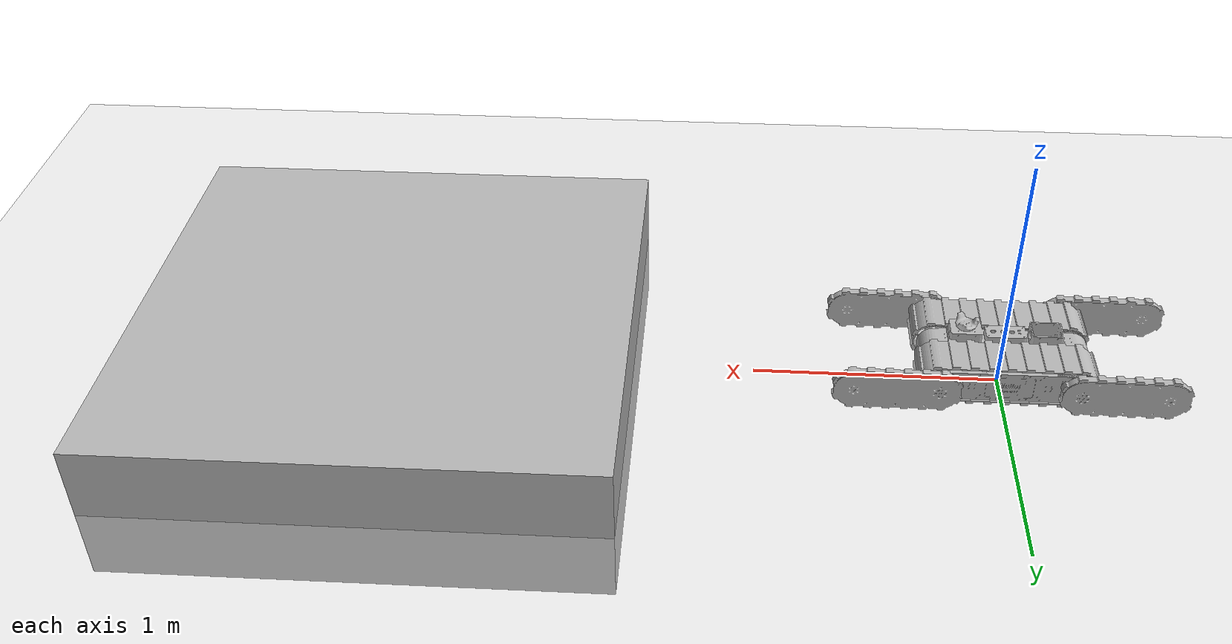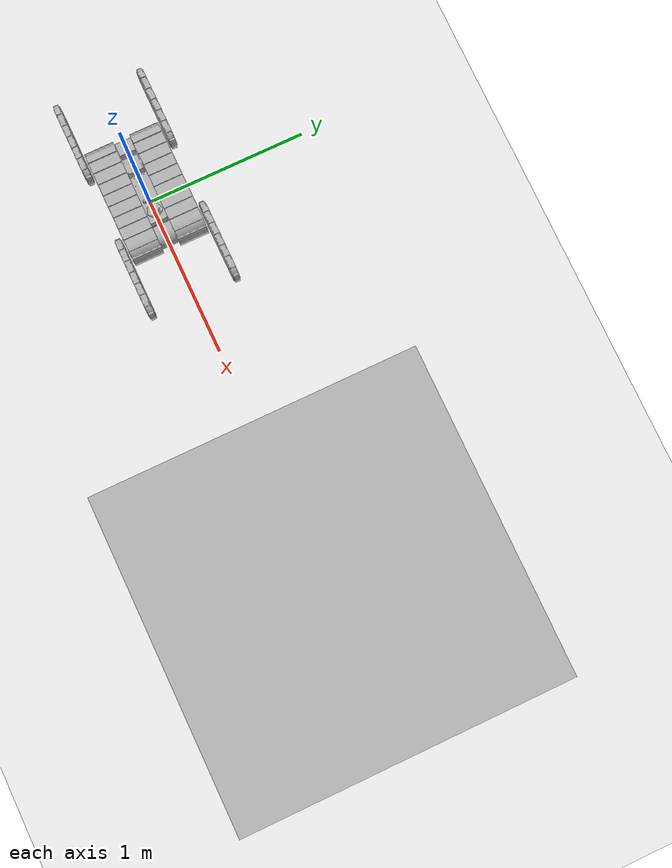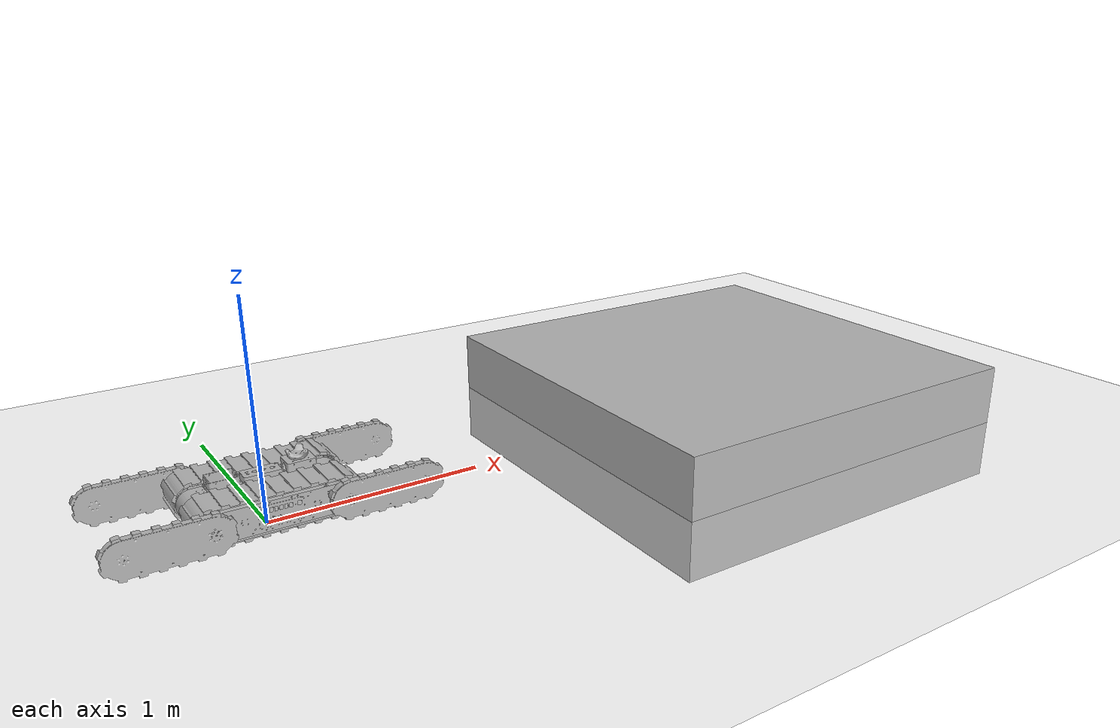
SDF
<?xml version="1.0" ?>
<sdf version="1.6">
    <world name="NuBot_Pumbaa_test_plate">
        <!--A demo world for tracked vehicles.-->

        <include>
            <uri>model://sun</uri>
        </include>

        <include>
            <uri>model://ground_plane</uri>
        </include>

        <model name="plate_obstacle">
            <pose frame=''>2.5 0 0 0 0 0</pose>
            <include>
                <uri>model://plate_obstacle</uri>
            </include>
        </model>

        <model name="NuBot_Pumbaa_v2">
            <pose frame=''>0 0 0.15 0 0 0</pose>
            <include>
                <uri>model://NuBot_Pumbaa_v2</uri>
            </include>
        </model>

	<plugin name="ElevationMapGroundTruthPlugin" filename="libhector_elevation_map_ground_truth_plugin.so"/>

	<plugin name="ContactPointPublisherPlugin" filename="libhector_contact_points_publisher_plugin.so"/>

    </world>
</sdf>

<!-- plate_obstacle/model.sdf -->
<sdf version="1.6">
    <model name="plate_obstacle">
        <static>true</static>
        <pose>0 0 0 0 0 0</pose>
        <link name="box">
            <collision name="plate_collision">
                <pose frame="">0 0 0 0 0 0</pose>
                <geometry>
                    <box>
                        <size>2 2 0.60</size>
                    </box>
                </geometry>
                <surface>
                    <friction>
                        <ode>
                            <mu>1</mu>
                        </ode>
                    </friction>
                </surface>
            </collision>
            <visual name="plate_visual">
                <pose frame="">0 0 0 0 0 0</pose>
                <geometry>
                    <box>
                        <size>2 2 0.60</size>
                    </box>
                </geometry>
            </visual>
        </link>
    </model>
</sdf>

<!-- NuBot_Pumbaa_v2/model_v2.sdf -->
<sdf version='1.6'>
  <model name='NuBot_Pumbaa_v2'>
    <static>false</static>
    <allow_auto_disable>1</allow_auto_disable>

    <!--base_link-->
    <link name='base_link'>
      <pose frame=''>0 0 0 0 0 0</pose>
      <inertial>
        <pose frame=''>0 0 0 0 0 0</pose>
        <mass>20</mass>
        <inertia>
          <ixx>0.203664</ixx>
          <ixy>0</ixy>
          <ixz>0</ixz>
          <iyy>0.136197</iyy>
          <iyz>0</iyz>
          <izz>0.319921</izz>
        </inertia>
      </inertial>
      <self_collide>0</self_collide>
      <gravity>1</gravity>
      <kinematic>0</kinematic>
      <enable_wind>0</enable_wind>

      <collision name='base_link_collision_1'>
        <max_contacts>10</max_contacts>
        <pose frame=''>0.276 0 0 1.5708 0 0</pose>
        <geometry>
          <cylinder>
            <radius>0.07</radius>
            <length>0.11</length>
          </cylinder>
        </geometry>
        <surface>
          <friction>
            <ode>
              <mu>1</mu>
              <mu2>1</mu2>
              <fdir1>0 1 0</fdir1>
            </ode>
          </friction>
        </surface>
      </collision>
      <collision name='base_link_collision_2'>
        <max_contacts>10</max_contacts>
        <pose frame=''>-0.276 0 0 1.5708 0 0</pose>
        <geometry>
          <cylinder>
            <radius>0.07</radius>
            <length>0.11</length>
          </cylinder>
        </geometry>
        <surface>
          <friction>
            <ode>
              <mu>1</mu>
              <mu2>1</mu2>
              <fdir1>0 1 0</fdir1>
            </ode>
          </friction>
        </surface>
      </collision>
      <collision name='base_link_collision'>
        <max_contacts>10</max_contacts>
        <pose frame=''>0 0 0 1.5708 0 1.5708</pose>
        <geometry>
          <box>
            <size>0.11 0.14 0.552</size>
          </box>
        </geometry>
        <surface>
          <friction>
            <ode>
              <mu>1</mu>
              <mu2>1</mu2>
              <fdir1>0 1 0</fdir1>
            </ode>
          </friction>
        </surface>
      </collision>
      <visual name='base_link_visual'>
        <pose frame=''>0 0 0 0 0 0</pose>
        <geometry>
          <mesh>
            <scale>1 1 1</scale>
            <uri>model://NuBot_Pumbaa_v2/meshes/base_link.STL</uri>
          </mesh>
        </geometry>
      </visual>
      <visual name='base_link_vive_link_visual'>
        <pose frame=''>0.16175 0 0.138 0 0 0</pose>
        <geometry>
          <mesh>
            <scale>1 1 1</scale>
            <uri>model://NuBot_Pumbaa_v2/meshes/vive_link.STL</uri>
          </mesh>
        </geometry>
      </visual>
    </link>

    <!--left_track-->
    <link name='left_track_link'>
      <pose frame=''>0 0.14 0 0 0 0</pose>
      <inertial>
        <pose frame=''>0 0 0 0 0 0</pose>
        <mass>10</mass>
        <inertia>
          <ixx>0.15</ixx>
          <ixy>0</ixy>
          <ixz>0</ixz>
          <iyy>0.9</iyy>
          <iyz>0</iyz>
          <izz>0.9</izz>
        </inertia>
      </inertial>>
      <gravity>1</gravity>
      <kinematic>0</kinematic>
      <self_collide>0</self_collide>
      <enable_wind>0</enable_wind>

      <visual name='left_track_visual'>
        <pose frame=''>0 -0.14 0 0 0 0</pose>
        <geometry>
          <mesh>
            <scale>1 1 1</scale>
            <uri>model://NuBot_Pumbaa_v2/meshes/left_track_link.STL</uri>
          </mesh>
        </geometry>>
      </visual>
      <collision name='left_track_collision_1'>
        <max_contacts>10</max_contacts>
        <pose frame=''>0.276 0 0 1.5708 0 0</pose>
        <geometry>
          <cylinder>
            <radius>0.09</radius>
            <length>0.18</length>
          </cylinder>
        </geometry>
        <surface>
          <friction>
            <ode>
              <mu>0.7</mu>
              <mu2>150</mu2>
              <fdir1>0 1 0</fdir1>
            </ode>
          </friction>
        </surface>
      </collision>
      <collision name='left_track_collision_2'>
        <max_contacts>10</max_contacts>
        <pose frame=''>-0.276 0 0 1.5708 0 0</pose>
        <geometry>
          <cylinder>
            <radius>0.09</radius>
            <length>0.18</length>
          </cylinder>
        </geometry>
        <surface>
          <friction>
            <ode>
              <mu>0.7</mu>
              <mu2>150</mu2>
              <fdir1>0 1 0</fdir1>
            </ode>
          </friction>
        </surface>
      </collision>
      <collision name='left_track_collision'>
        <max_contacts>10</max_contacts>
        <pose frame=''>0 0 0 1.5708 0 1.5708</pose>
        <geometry>
          <box>
            <size>0.18 0.18 0.552</size>
          </box>
        </geometry>
        <surface>
          <friction>
            <ode>
              <mu>0.7</mu>
              <mu2>150</mu2>
              <fdir1>0 1 0</fdir1>
            </ode>
          </friction>
        </surface>
      </collision>
    </link>

    <!--right_track-->
    <link name='right_track_link'>
      <pose frame=''>0 -0.14 0 0 0 0</pose>
      <inertial>
        <pose frame=''>0 0 0 0 0 0</pose>
        <mass>10</mass>
        <inertia>
          <ixx>0.15</ixx>
          <ixy>0</ixy>
          <ixz>0</ixz>
          <iyy>0.9</iyy>
          <iyz>0</iyz>
          <izz>0.9</izz>
        </inertia>
      </inertial>
      <gravity>1</gravity>
      <kinematic>0</kinematic>
      <self_collide>0</self_collide>
      <enable_wind>0</enable_wind>

      <visual name='right_track_visual'>
        <pose frame=''>0 0.14 0 0 0 0</pose>
        <geometry>
          <mesh>
            <scale>1 1 1</scale>
            <uri>model://NuBot_Pumbaa_v2/meshes/right_track_link.STL</uri>
          </mesh>
        </geometry>
      </visual>
      <collision name='right_track_collision_1'>
        <max_contacts>10</max_contacts>
        <pose frame=''>0.276 0 0 1.5708 0 0</pose>
        <geometry>
          <cylinder>
            <radius>0.09</radius>
            <length>0.18</length>
          </cylinder>
        </geometry>
        <surface>
          <friction>
            <ode>
              <mu>0.7</mu>
              <mu2>150</mu2>
              <fdir1>0 1 0</fdir1>
            </ode>
          </friction>
        </surface>
      </collision>
      <collision name='right_track_collision'>
        <max_contacts>10</max_contacts>
        <pose frame=''>0 0 0 1.5708 0 1.5708</pose>
        <geometry>
          <box>
            <size>0.18 0.18 0.552</size>
          </box>
        </geometry>
        <surface>
          <friction>
            <ode>
              <mu>0.7</mu>
              <mu2>150</mu2>
              <fdir1>0 1 0</fdir1>
            </ode>
          </friction>
        </surface>
      </collision>
      <collision name='right_track_collision_2'>
        <max_contacts>10</max_contacts>
        <pose frame=''>-0.276 0 0 1.5708 0 0</pose>
        <geometry>
          <cylinder>
            <radius>0.09</radius>
            <length>0.18</length>
          </cylinder>
        </geometry>
        <surface>
          <friction>
            <ode>
              <mu>0.7</mu>
              <mu2>150</mu2>
              <fdir1>0 1 0</fdir1>
            </ode>
          </friction>
        </surface>
      </collision>
    </link>

    <!--main_track joints-->
    <joint name='left_track_joint' type='fixed'>
      <parent>base_link</parent>
      <child>left_track_link</child>
    </joint>
    <joint name='right_track_joint' type='fixed'>
      <parent>base_link</parent>
      <child>right_track_link</child>
    </joint>

    <!--rear_left_flipper-->
    <link name='rear_left_flipper_link'>
      <pose frame=''>-0.276 0.25 0 0 0 0</pose>
      <inertial>
        <pose frame=''>-0.16867 0.015987 0 0 0 0</pose>
        <mass>2.5</mass>
        <inertia>
          <ixx>0.002449</ixx>
          <ixy>0</ixy>
          <ixz>0</ixz>
          <iyy>0.02168</iyy>
          <iyz>0</iyz>
          <izz>0.019288</izz>
        </inertia>
      </inertial>
      <gravity>1</gravity>
      <velocity_decay/>
      <self_collide>0</self_collide>
      <kinematic>0</kinematic>
      <enable_wind>0</enable_wind>

      <collision name='rear_left_flipper_collision_large_wheel_collision'>
        <max_contacts>20</max_contacts>
        <pose frame=''>0 0.016 0 1.5708 0 0</pose>
        <geometry>
          <cylinder>
            <radius>0.09</radius>
            <length>0.038</length>
          </cylinder>
        </geometry>
        <surface>
          <friction>
            <ode>
              <mu>0.7</mu>
              <mu2>150</mu2>
              <fdir1>0 1 0</fdir1>
            </ode>
          </friction>
        </surface>
      </collision>
      <collision name='rear_left_flipper_collision_small_wheel_collision'>
        <max_contacts>20</max_contacts>
        <pose frame=''>-0.336 0.016 0 1.5708 0 0</pose>
        <geometry>
          <cylinder>
            <radius>0.09</radius>
            <length>0.038</length>
          </cylinder>
        </geometry>
        <surface>
          <friction>
            <ode>
              <mu>0.7</mu>
              <mu2>150</mu2>
              <fdir1>0 1 0</fdir1>
            </ode>
          </friction>
        </surface>
      </collision>
      <collision name='rear_left_flipper_collision_middle_bar_collision'>
        <max_contacts>20</max_contacts>
        <pose frame=''>-0.168 0.016 0 0 0 0</pose>
        <geometry>
          <box>
            <size>0.336 0.038 0.18</size>
          </box>
        </geometry>
        <surface>
          <friction>
            <ode>
              <mu>0.7</mu>
              <mu2>150</mu2>
              <fdir1>0 1 0</fdir1>
            </ode>
          </friction>
        </surface>
      </collision>
      <visual name='rear_left_flipper_visual'>
        <pose frame=''>0 0 0 0 0 0</pose>
        <geometry>
          <mesh>
            <scale>1 1 1</scale>
            <uri>model://NuBot_Pumbaa_v2/meshes/back_left_fin_link.STL</uri>
          </mesh>
        </geometry>
      </visual>
    </link>
    <joint name='rear_left_flipper_joint' type='revolute'>
      <child>rear_left_flipper_link</child>
      <parent>base_link</parent>
      <pose frame=''>0 0 0 0 0 0</pose>
      <axis>
        <xyz>0 1 0</xyz>
        <limit>
          <lower>-3</lower>
          <upper>3</upper>
          <effort>-1</effort>
          <velocity>0.3</velocity>
        </limit>
        <dynamics>
          <spring_reference>0</spring_reference>
          <spring_stiffness>0</spring_stiffness>
          <damping>10</damping>
          <friction>0</friction>
        </dynamics>
        <use_parent_model_frame>1</use_parent_model_frame>
      </axis>
      <physics>
        <ode>
          <implicit_spring_damper>1</implicit_spring_damper>
          <cfm_damping>1</cfm_damping>
          <limit>
            <cfm>0</cfm>
            <erp>0.2</erp>
          </limit>
        </ode>
      </physics>
    </joint>

    <!--rear_right_flipper-->
    <link name='rear_right_flipper_link'>
      <pose frame=''>-0.276 -0.25 0 0 0 0</pose>
      <inertial>
        <pose frame=''>-0.16867 -0.015987 0 0 0 0</pose>
        <mass>2.5</mass>
        <inertia>
          <ixx>0.002449</ixx>
          <ixy>0</ixy>
          <ixz>0</ixz>
          <iyy>0.02168</iyy>
          <iyz>0</iyz>
          <izz>0.019288</izz>
        </inertia>
      </inertial>
      <gravity>1</gravity>
      <velocity_decay/>
      <self_collide>1</self_collide>
      <kinematic>0</kinematic>
      <enable_wind>0</enable_wind>

      <collision name='rear_right_flipper_collision_large_wheel_collision'>
        <max_contacts>20</max_contacts>
        <pose frame=''>0 -0.016 0 1.5708 0 0</pose>
        <geometry>
          <cylinder>
            <radius>0.09</radius>
            <length>0.038</length>
          </cylinder>
        </geometry>
        <surface>
          <friction>
            <ode>
              <mu>0.7</mu>
              <mu2>150</mu2>
              <fdir1>0 1 0</fdir1>
            </ode>
          </friction>
        </surface>
      </collision>
      <collision name='rear_right_flipper_collision_small_wheel_collision'>
        <max_contacts>20</max_contacts>
        <pose frame=''>-0.336 -0.016 0 1.5708 0 0</pose>
        <geometry>
          <cylinder>
            <radius>0.09</radius>
            <length>0.038</length>
          </cylinder>
        </geometry>
        <surface>
          <friction>
            <ode>
              <mu>0.7</mu>
              <mu2>150</mu2>
              <fdir1>0 1 0</fdir1>
            </ode>
          </friction>
        </surface>
      </collision>
      <collision name='rear_right_flipper_collision_middle_bar_collision'>
        <max_contacts>20</max_contacts>
        <pose frame=''>-0.168 -0.016 0 0 0 -3.1416</pose>
        <geometry>
          <box>
            <size>0.336 0.038 0.18</size>
          </box>
        </geometry>
        <surface>
          <friction>
            <ode>
              <mu>0.7</mu>
              <mu2>150</mu2>
              <fdir1>0 1 0</fdir1>
            </ode>
          </friction>
        </surface>
      </collision>
      <visual name='rear_right_flipper_visual'>
        <pose frame=''>0 0 0 0 0 0</pose>
        <geometry>
          <mesh>
            <scale>1 1 1</scale>
            <uri>model://NuBot_Pumbaa_v2/meshes/back_right_fin_link.STL</uri>
          </mesh>
        </geometry>
      </visual>
    </link>
    <joint name='rear_right_flipper_joint' type='revolute'>
      <child>rear_right_flipper_link</child>
      <parent>base_link</parent>
      <pose frame=''>0 0 0 0 0 0</pose>
      <axis>
        <xyz>0 1 0</xyz>
        <limit>
          <lower>-3</lower>
          <upper>3</upper>
          <effort>-1</effort>
          <velocity>0.3</velocity>
        </limit>
        <dynamics>
          <spring_reference>0</spring_reference>
          <spring_stiffness>0</spring_stiffness>
          <damping>10</damping>
          <friction>0</friction>
        </dynamics>
        <use_parent_model_frame>1</use_parent_model_frame>
      </axis>
      <physics>
        <ode>
          <implicit_spring_damper>1</implicit_spring_damper>
          <cfm_damping>1</cfm_damping>
          <limit>
            <cfm>0</cfm>
            <erp>0.2</erp>
          </limit>
        </ode>
      </physics>
    </joint>

    <!--front_left_flipper-->
    <link name='front_left_flipper_link'>
      <pose frame=''>0.276 0.25 0 0 0 0</pose>
      <inertial>
        <pose frame=''>0.16867 0.015987 0 0 0 0</pose>
        <mass>2.5</mass>
        <inertia>
          <ixx>0.002449</ixx>
          <ixy>0</ixy>
          <ixz>0</ixz>
          <iyy>0.02168</iyy>
          <iyz>0</iyz>
          <izz>0.019288</izz>
        </inertia>
      </inertial>
      <gravity>1</gravity>
      <velocity_decay/>
      <self_collide>1</self_collide>
      <kinematic>0</kinematic>
      <enable_wind>0</enable_wind>

      <collision name='front_left_flipper_collision_large_wheel_collision'>
        <max_contacts>20</max_contacts>
        <pose frame=''>0 0.016 0 1.5708 0 0</pose>
        <geometry>
          <cylinder>
            <radius>0.09</radius>
            <length>0.038</length>
          </cylinder>
        </geometry>
        <surface>
          <friction>
            <ode>
              <mu>0.7</mu>
              <mu2>150</mu2>
              <fdir1>0 1 0</fdir1>
            </ode>
          </friction>
        </surface>
      </collision>
      <collision name='front_left_flipper_collision_small_wheel_collision'>
        <max_contacts>20</max_contacts>
        <pose frame=''>0.336 0.016 0 1.5708 0 0</pose>
        <geometry>
          <cylinder>
            <radius>0.09</radius>
            <length>0.038</length>
          </cylinder>
        </geometry>
        <surface>
          <friction>
            <ode>
              <mu>0.7</mu>
              <mu2>150</mu2>
              <fdir1>0 1 0</fdir1>
            </ode>
          </friction>
        </surface>
      </collision>
      <collision name='front_left_flipper_collision_middle_bar_collision'>
        <max_contacts>20</max_contacts>
        <pose frame=''>0.168 0.016 0 0 0 0</pose>
        <geometry>
          <box>
            <size>0.336 0.038 0.18</size>
          </box>
        </geometry>
        <surface>
          <friction>
            <ode>
              <mu>0.7</mu>
              <mu2>150</mu2>
              <fdir1>0 1 0</fdir1>
            </ode>
          </friction>
        </surface>
      </collision>
      <visual name='front_left_flipper_visual'>
        <pose frame=''>0 0 0 0 0 0</pose>
        <geometry>
          <mesh>
            <scale>1 1 1</scale>
            <uri>model://NuBot_Pumbaa_v2/meshes/front_left_fin_link.STL</uri>
          </mesh>
        </geometry>
      </visual>
    </link>
    <joint name='front_left_flipper_joint' type='revolute'>
      <child>front_left_flipper_link</child>
      <parent>base_link</parent>
      <pose frame=''>0 0 0 0 0 0</pose>
      <axis>
        <xyz>0 1 0</xyz>
        <limit>
          <lower>-3</lower>
          <upper>3</upper>
          <effort>-1</effort>
          <velocity>0.3</velocity>
        </limit>
        <dynamics>
          <spring_reference>0</spring_reference>
          <spring_stiffness>0</spring_stiffness>
          <damping>10</damping>
          <friction>0</friction>
        </dynamics>
        <use_parent_model_frame>1</use_parent_model_frame>
      </axis>
      <physics>
        <ode>
          <implicit_spring_damper>1</implicit_spring_damper>
          <cfm_damping>1</cfm_damping>
          <limit>
            <cfm>0</cfm>
            <erp>0.2</erp>
          </limit>
        </ode>
      </physics>
    </joint>

    <!--front_right_flipper-->
    <link name='front_right_flipper_link'>
      <pose frame=''>0.276 -0.25 0 0 0 0</pose>
      <inertial>
        <pose frame=''>0.16867 -0.015987 0 0 0 0</pose>
        <mass>2.5</mass>
        <inertia>
          <ixx>0.002449</ixx>
          <ixy>0</ixy>
          <ixz>0</ixz>
          <iyy>0.02168</iyy>
          <iyz>0</iyz>
          <izz>0.019288</izz>
        </inertia>
      </inertial>
      <gravity>1</gravity>
      <velocity_decay/>
      <self_collide>1</self_collide>
      <kinematic>0</kinematic>
      <enable_wind>0</enable_wind>

      <collision name='front_right_flipper_collision_large_wheel_collision'>
        <max_contacts>20</max_contacts>
        <pose frame=''>0 -0.016 0 1.5708 0 0</pose>
        <geometry>
          <cylinder>
            <radius>0.09</radius>
            <length>0.038</length>
          </cylinder>
        </geometry>
        <surface>
          <friction>
            <ode>
              <mu>0.7</mu>
              <mu2>150</mu2>
              <fdir1>0 1 0</fdir1>
            </ode>
          </friction>
        </surface>
      </collision>
      <collision name='front_right_flipper_collision_small_wheel_collision'>
        <max_contacts>20</max_contacts>
        <pose frame=''>0.336 -0.016 0 1.5708 0 0</pose>
        <geometry>
          <cylinder>
            <radius>0.09</radius>
            <length>0.038</length>
          </cylinder>
        </geometry>
        <surface>
          <friction>
            <ode>
              <mu>0.7</mu>
              <mu2>150</mu2>
              <fdir1>0 1 0</fdir1>
            </ode>
          </friction>
        </surface>
      </collision>
      <collision name='front_right_flipper_collision_middle_bar_collision'>
        <max_contacts>20</max_contacts>
        <pose frame=''>0.168 -0.016 0 0 0 -3.1416</pose>
        <geometry>
          <box>
            <size>0.336 0.038 0.18</size>
          </box>
        </geometry>
        <surface>
          <friction>
            <ode>
              <mu>0.7</mu>
              <mu2>150</mu2>
              <fdir1>0 1 0</fdir1>
            </ode>
          </friction>
        </surface>
      </collision>
      <visual name='front_right_flipper_link_visual'>
        <pose frame=''>0 0 0 0 0 0</pose>
        <geometry>
          <mesh>
            <scale>1 1 1</scale>
            <uri>model://NuBot_Pumbaa_v2/meshes/front_right_fin_link.STL</uri>
          </mesh>
        </geometry>
      </visual>
    </link>
    <joint name='front_right_flipper_joint' type='revolute'>
      <child>front_right_flipper_link</child>
      <parent>base_link</parent>
      <pose frame=''>0 0 0 0 0 0</pose>
      <axis>
        <xyz>0 1 0</xyz>
        <limit>
          <lower>-3</lower>
          <upper>3</upper>
          <effort>-1</effort>
          <velocity>0.3</velocity>
        </limit>
        <dynamics>
          <spring_reference>0</spring_reference>
          <spring_stiffness>0</spring_stiffness>
          <damping>10</damping>
          <friction>0</friction>
        </dynamics>
        <use_parent_model_frame>1</use_parent_model_frame>
      </axis>
      <physics>
        <ode>
          <implicit_spring_damper>1</implicit_spring_damper>
          <cfm_damping>1</cfm_damping>
          <limit>
            <cfm>0</cfm>
            <erp>0.2</erp>
          </limit>
        </ode>
      </physics>
    </joint>

    <plugin name='NuBot_Pumbaa_Gazebo_Plugin' filename='libnubot_pumbaa_plugin.so'>
      <!--The link tags of tracks-->
      <body>base_link</body>
      <left_track>left_track_link</left_track>
      <right_track>right_track_link</right_track>
      <left_flipper>front_left_flipper_link</left_flipper>
      <left_flipper>rear_left_flipper_link</left_flipper>
      <right_flipper>front_right_flipper_link</right_flipper>
      <right_flipper>rear_right_flipper_link</right_flipper>
      <!--The flippers' joint tag-->
      <front_left_flipper_j>front_left_flipper_joint</front_left_flipper_j>
      <rear_left_flipper_j>rear_left_flipper_joint</rear_left_flipper_j>
      <front_right_flipper_j>front_right_flipper_joint</front_right_flipper_j>
      <rear_right_flipper_j>rear_right_flipper_joint</rear_right_flipper_j>
      <!--The Mu/Mu2 of tracks, which influnce the simulating performance-->
      <track_mu>2</track_mu>
      <track_mu2>0.5</track_mu2>
      <!--The PID parameter of flippers position controll & initial position 1.5708 -->
      <flip_p>1500</flip_p>
      <flip_i>100</flip_i>
      <flip_d>0</flip_d>
      <flip_initial>1.5708</flip_initial>
      <!--The parameters of tracks-->
      <tracksSeparation>0.285</tracksSeparation>
      <steeringEfficiency>0.5</steeringEfficiency>
      <maxLinearSpeed>2.0</maxLinearSpeed>
      <maxAngularSpeed>1.5</maxAngularSpeed>
    </plugin>
  </model>
</sdf>
